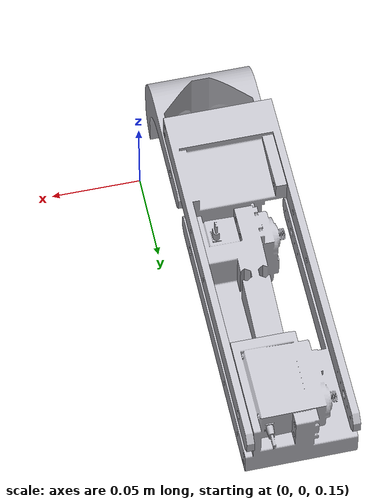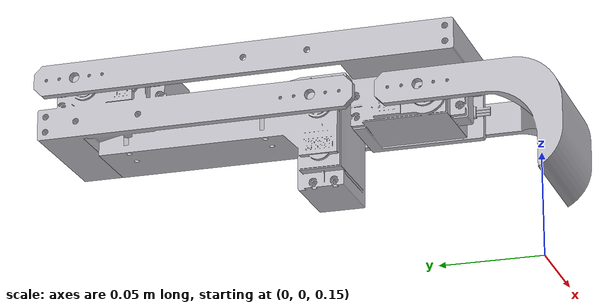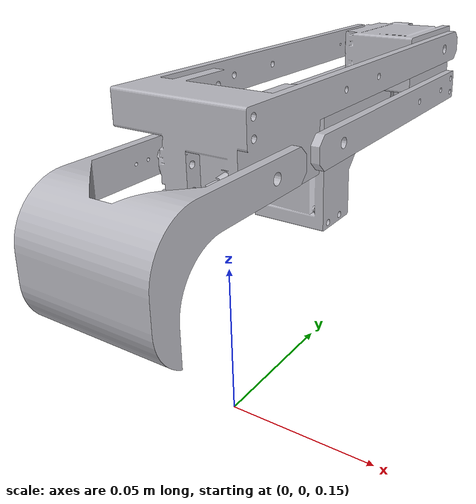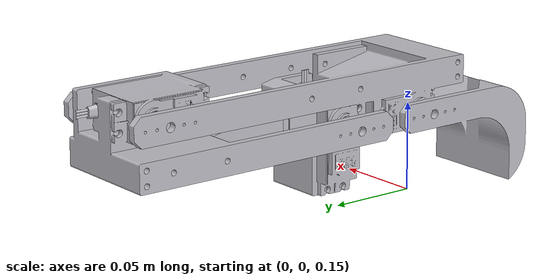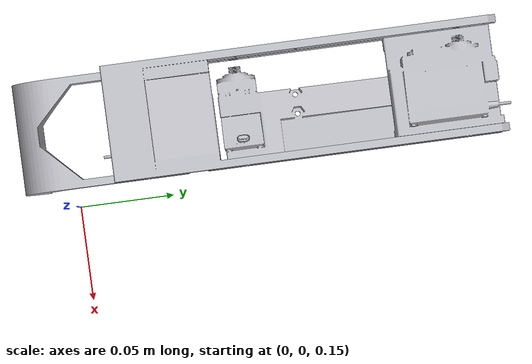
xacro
<?xml version="1.0" ?>
<robot name="Arm" xmlns:xacro="http://www.ros.org/wiki/xacro">

<xacro:include filename="$(find Arm_description)/urdf/materials.xacro" />
<xacro:include filename="$(find Arm_description)/urdf/Arm.trans" />
<xacro:include filename="$(find Arm_description)/urdf/Arm.gazebo" />
<link name="base_link">
  <inertial>
    <origin xyz="-0.033086661140851216 0.11272710048947326 0.20783705060864988" rpy="0 0 0"/>
    <mass value="0.6134469897625638"/>
    <inertia ixx="0.000676" iyy="0.000169" izz="0.000643" ixy="2e-06" iyz="-5.2e-05" ixz="6e-06"/>
  </inertial>
  <visual>
    <origin xyz="0 0 0" rpy="0 0 0"/>
    <geometry>
      <mesh filename="package://Arm_description/meshes/base_link.stl" scale="0.001 0.001 0.001"/>
    </geometry>
    <material name="silver"/>
  </visual>
  <collision>
    <origin xyz="0 0 0" rpy="0 0 0"/>
    <geometry>
      <mesh filename="package://Arm_description/meshes/base_link.stl" scale="0.001 0.001 0.001"/>
    </geometry>
  </collision>
</link>

<link name="Lengan1_1">
  <inertial>
    <origin xyz="-0.022851808904213865 0.09700066332302583 0.010591517157848174" rpy="0 0 0"/>
    <mass value="0.7413208818961168"/>
    <inertia ixx="0.00077" iyy="0.000314" izz="0.000898" ixy="-1.3e-05" iyz="-5.2e-05" ixz="-1.9e-05"/>
  </inertial>
  <visual>
    <origin xyz="0.013002 -0.090906 -0.214389" rpy="0 0 0"/>
    <geometry>
      <mesh filename="package://Arm_description/meshes/Lengan1_1.stl" scale="0.001 0.001 0.001"/>
    </geometry>
    <material name="silver"/>
  </visual>
  <collision>
    <origin xyz="0.013002 -0.090906 -0.214389" rpy="0 0 0"/>
    <geometry>
      <mesh filename="package://Arm_description/meshes/Lengan1_1.stl" scale="0.001 0.001 0.001"/>
    </geometry>
  </collision>
</link>

<link name="Lengan2_1">
  <inertial>
    <origin xyz="-0.023024919025971383 -0.13872092114677864 -0.009958623814111112" rpy="0 0 0"/>
    <mass value="0.7884208818961838"/>
    <inertia ixx="0.001649" iyy="0.000357" izz="0.001808" ixy="3e-05" iyz="-0.000117" ixz="2e-05"/>
  </inertial>
  <visual>
    <origin xyz="0.013002 -0.205766 -0.236325" rpy="0 0 0"/>
    <geometry>
      <mesh filename="package://Arm_description/meshes/Lengan2_1.stl" scale="0.001 0.001 0.001"/>
    </geometry>
    <material name="silver"/>
  </visual>
  <collision>
    <origin xyz="0.013002 -0.205766 -0.236325" rpy="0 0 0"/>
    <geometry>
      <mesh filename="package://Arm_description/meshes/Lengan2_1.stl" scale="0.001 0.001 0.001"/>
    </geometry>
  </collision>
</link>

<link name="Lengan3_1">
  <inertial>
    <origin xyz="-0.024732533372126303 -0.04915643998647018 -0.013317913228513167" rpy="0 0 0"/>
    <mass value="0.3488963907818242"/>
    <inertia ixx="0.000184" iyy="0.000195" izz="0.000255" ixy="-0.0" iyz="-4.5e-05" ixz="-0.0"/>
  </inertial>
  <visual>
    <origin xyz="0.013002 -0.040906 -0.214389" rpy="0 0 0"/>
    <geometry>
      <mesh filename="package://Arm_description/meshes/Lengan3_1.stl" scale="0.001 0.001 0.001"/>
    </geometry>
    <material name="silver"/>
  </visual>
  <collision>
    <origin xyz="0.013002 -0.040906 -0.214389" rpy="0 0 0"/>
    <geometry>
      <mesh filename="package://Arm_description/meshes/Lengan3_1.stl" scale="0.001 0.001 0.001"/>
    </geometry>
  </collision>
</link>

<joint name="Revolute 1" type="continuous">
  <origin xyz="-0.013002 0.090906 0.214389" rpy="0 0 0"/>
  <parent link="base_link"/>
  <child link="Lengan1_1"/>
  <axis xyz="1.0 -0.0 -0.0"/>
</joint>

<joint name="Revolute 2" type="continuous">
  <origin xyz="0.0 0.11486 0.021936" rpy="0 0 0"/>
  <parent link="Lengan1_1"/>
  <child link="Lengan2_1"/>
  <axis xyz="-1.0 -0.0 -0.0"/>
</joint>

<joint name="Revolute 3" type="continuous">
  <origin xyz="0.0 -0.16486 -0.021936" rpy="0 0 0"/>
  <parent link="Lengan2_1"/>
  <child link="Lengan3_1"/>
  <axis xyz="1.0 -0.0 0.0"/>
</joint>

</robot>

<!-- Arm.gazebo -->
<robot name="Arm" xmlns:xacro="http://www.ros.org/wiki/xacro" >

<xacro:property name="body_color" value="Gazebo/Silver" />

<gazebo>
  <plugin name="control" filename="libgazebo_ros_control.so"/>
</gazebo>
<gazebo reference="base_link">
  <material>${body_color}</material>
  <mu1>0.2</mu1>
  <mu2>0.2</mu2>
  <selfCollide>true</selfCollide>
  <gravity>true</gravity>
</gazebo>

<gazebo reference="Lengan1_1">
  <material>${body_color}</material>
  <mu1>0.2</mu1>
  <mu2>0.2</mu2>
  <selfCollide>true</selfCollide>
</gazebo>

<gazebo reference="Lengan2_1">
  <material>${body_color}</material>
  <mu1>0.2</mu1>
  <mu2>0.2</mu2>
  <selfCollide>true</selfCollide>
</gazebo>

<gazebo reference="Lengan3_1">
  <material>${body_color}</material>
  <mu1>0.2</mu1>
  <mu2>0.2</mu2>
  <selfCollide>true</selfCollide>
</gazebo>

</robot>
